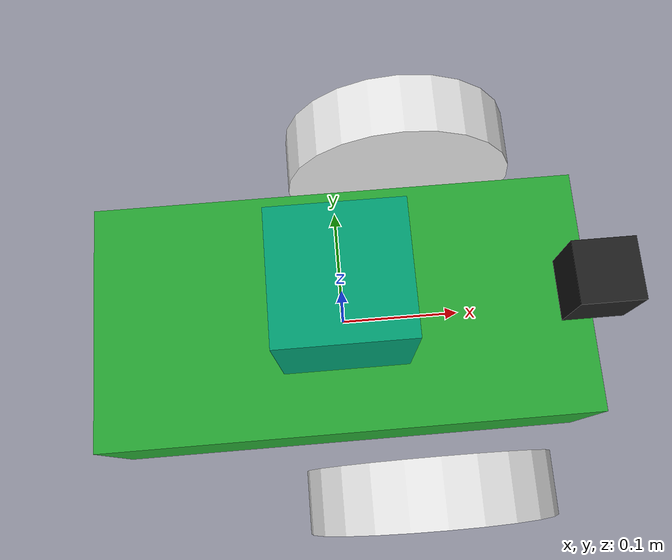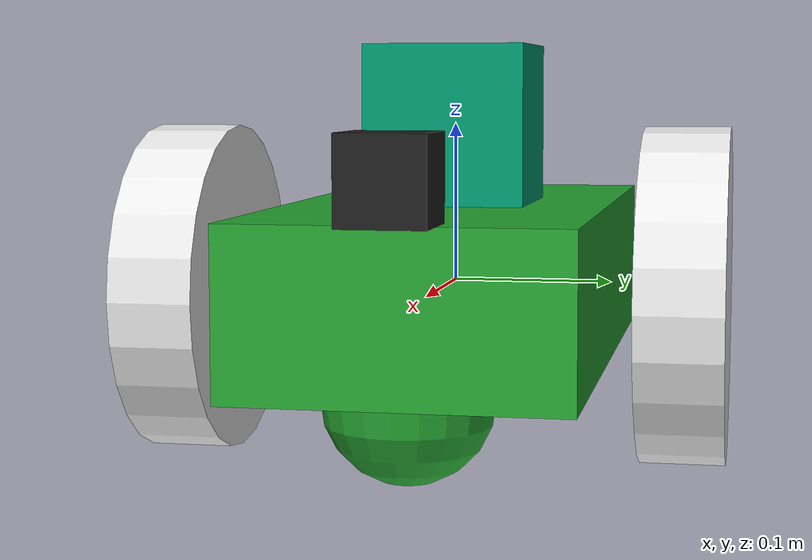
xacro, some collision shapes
<?xml version='1.0'?>

<robot name="my_robot" xmlns:xacro="http://www.ros.org/wiki/xacro">

<xacro:include filename="$(find my_robot)/urdf/my_robot.gazebo" />

  <link name="robot_footprint"></link>

  <joint name="robot_footprint_joint" type="fixed">
    <origin xyz="0 0 0" rpy="0 0 0" />
    <parent link="robot_footprint"/>
    <child link="chassis" />
  </joint>

  <link name='chassis'>
    <pose>0 0 0.1 0 0 0</pose>

    <inertial>
      <mass value="15.0"/>
      <origin xyz="0.0 0 0" rpy=" 0 0 0"/>
      <inertia
          ixx="0.1" ixy="0" ixz="0"
          iyy="0.1" iyz="0"
          izz="0.1"
      />
    </inertial>

    <collision name='collision'>
      <origin xyz="0 0 0" rpy=" 0 0 0"/>
      <geometry>
        <box size=".3 .2 .1"/>
      </geometry>
    </collision>

    <visual name='chassis_visual'>
      <origin xyz="0 0 0" rpy=" 0 0 0"/>
      <geometry>
        <box size=".4 .2 .1"/>
      </geometry>
    </visual>

    <collision name='back_caster_collision'>
      <origin xyz="-0.15 0 -0.05" rpy=" 0 0 0"/>
      <geometry>
        <sphere radius="0.0499"/>
      </geometry>
    </collision>

    <visual name='back_caster_visual'>
      <origin xyz="-0.15 0 -0.05" rpy=" 0 0 0"/>
      <geometry>
        <sphere radius="0.05"/>
      </geometry>
    </visual>

    <collision name='front_caster_collision'>
      <origin xyz="0.15 0 -0.05" rpy=" 0 0 0"/>
      <geometry>
        <sphere radius="0.0499"/>
      </geometry>
    </collision>

    <visual name='front_caster_visual'>
      <origin xyz="0.15 0 -0.05" rpy=" 0 0 0"/>
      <geometry>
        <sphere radius="0.05"/>
      </geometry>
    </visual>

  </link>

    <gazebo reference="left_wheel">
    <material>Gazebo/White</material>
    </gazebo>

    <gazebo reference="right_wheel">
    <material>Gazebo/White</material>
    </gazebo>

    <gazebo reference="chassis">
    <material>Gazebo/Green</material>
    </gazebo>

    <gazebo reference="camera">
    <material>Gazebo/Black</material>
    </gazebo>

    <link name="hokuyo">
    <pose> 0 0 0 0 0 0</pose>

     <inertial>
      <mass value="1e-5"/>
      <origin xyz="0 0 0" rpy=" 0 0 0"/>
      <inertia
          ixx="1e-6" ixy="0" ixz="0"
          iyy="1e-6" iyz="0"
          izz="1e-6"
      />
    </inertial>

    <collision name='collision'>
      <origin xyz="0 0 0" rpy=" 0 0 0"/>
      <geometry>
         <box size="0.1 0.1 0.1"/>
      </geometry>
    </collision>

    <visual name='visual'>
    <origin xyz="0 0 0" rpy=" 0 0 0"/>
    <geometry>
    <mesh filename="package://my_robot/meshes/hokuyo.dae"/>
    </geometry>
    </visual>

    </link>

    <joint type="fixed" name="hokuyo_joint">
    <origin xyz="0 0 0.1" rpy="0 0 0" />
    <child link="hokuyo"/>
    <parent link="chassis"/>
    <axis xyz="0 1 0" rpy="0 0 0"/>
    </joint>

   <link name="camera">
   <pose> 0 0 0 0 0 0</pose>

    <inertial>
      <mass value="1e-5"/>
      <origin xyz="0 0 0" rpy=" 0 0 0"/>
      <inertia
          ixx="1e-6" ixy="0" ixz="0"
          iyy="1e-6" iyz="0"
          izz="1e-6"/>

      <box_inertia m="1e-5" x="0.05" y="0.05" z="0.05"/>
    </inertial>

    <collision name='collision'>
      <origin xyz="0 0 0" rpy=" 0 0 0"/>
      <geometry>
         <box size="0.05 0.05 0.05"/>
      </geometry>
    </collision>

    <visual name='visual'>
      <origin xyz="0 0 0" rpy=" 0 0 0"/>
      <geometry>
        <box size="0.05 0.05 0.05"/>
      </geometry>
    </visual>
   </link>

   <joint type="fixed" name="camera_joint">
    <origin xyz="0.2 0 0.075" rpy="0 0 0" />
    <child link="camera"/>
    <parent link="chassis"/>
    <axis xyz="0 1 0" rpy="0 0 0"/>
    </joint>

    <link name="left_wheel">
    <pose>0 0 0 0 0 0</pose>

    <inertial>
      <mass value="5"/>
      <origin xyz="0 0 0" rpy=" 0 1.5707 1.5707"/>
      <inertia
          ixx="0.1" ixy="0" ixz="0"
          iyy="0.1" iyz="0"
          izz="0.1"
      />
    </inertial>

    <collision name='collision'>
      <origin xyz="0 0 0" rpy=" 0 1.5707 1.5707"/>
      <geometry>
         <cylinder length="0.05" radius="0.1"/>
      </geometry>
    </collision>

    <visual name='visual'>
      <origin xyz="0 0 0" rpy=" 0 1.5707 1.5707"/>
      <geometry>
        <cylinder length="0.05" radius="0.1"/>
      </geometry>
    </visual>
    </link>

    <link name="right_wheel">
    <pose>0 0 0 0 0 0</pose>

    <inertial>
      <mass value="5"/>
      <origin xyz="0 0 0" rpy=" 0 1.5707 1.5707"/>
      <inertia
          ixx="0.1" ixy="0" ixz="0"
          iyy="0.1" iyz="0"
          izz="0.1"
      />
    </inertial>

    <collision name='collision'>
      <origin xyz="0 0 0" rpy=" 0 1.5707 1.5707"/>
      <geometry>
         <cylinder length="0.05" radius="0.1"/>
      </geometry>
    </collision>

    <visual name='visual'>
      <origin xyz="0 0 0" rpy=" 0 1.5707 1.5707"/>
      <geometry>
         <cylinder length="0.05" radius="0.1"/>
      </geometry>
    </visual>
    </link>

   <joint type="continuous" name="left_wheel_hinge">
    <origin xyz="0.06 0.15 0" rpy="0 0 0" />
    <child link="left_wheel"/>
    <parent link="chassis"/>
    <axis xyz="0 1 0" rpy="0 0 0"/>
    <limit effort="10000" velocity="1000"/>
    <dynamics damping="1.0" friction="1.0"/>
    </joint>

    <joint type="continuous" name="right_wheel_hinge">
    <origin xyz="0.06 -0.15 0" rpy="0 0 0" />
    <child link="right_wheel"/>
    <parent link="chassis"/>
    <axis xyz="0 1 0" rpy="0 0 0"/>
    <limit effort="10000" velocity="1000"/>
    <dynamics damping="1.0" friction="1.0"/>
    </joint>

</robot>
